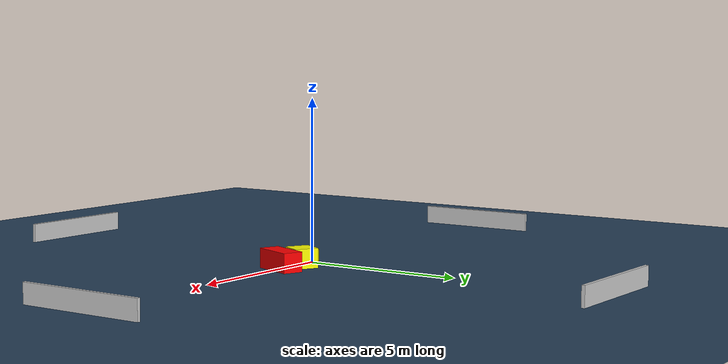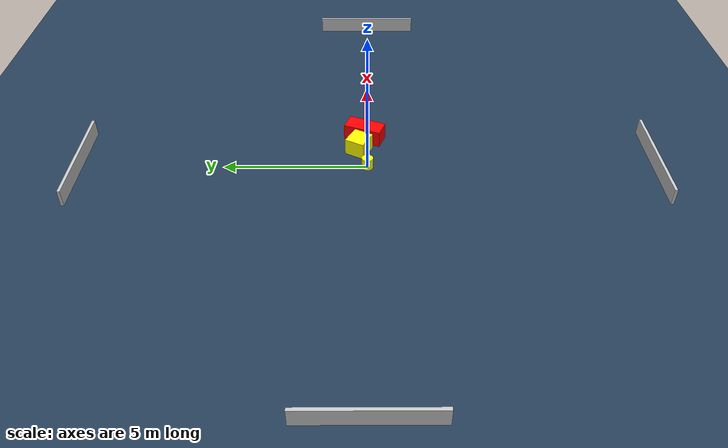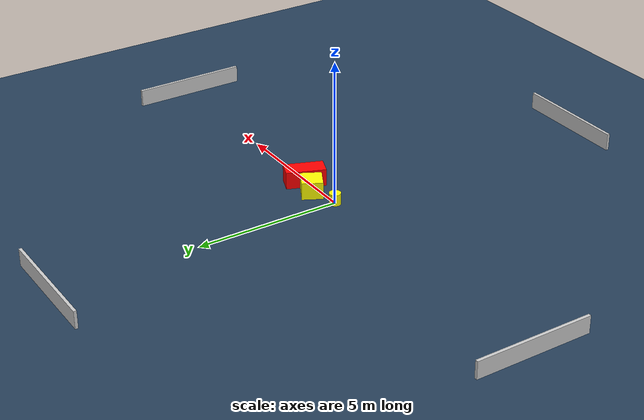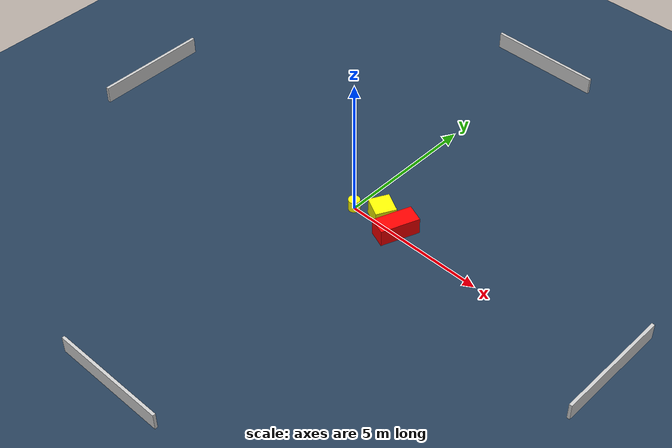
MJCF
<?xml version="1.0" ?>
<mujoco model="generated_environment">
  <option timestep="0.01" integrator="RK4" cone="elliptic"/>
  <default>
    <geom density="1"/>
  </default>
  <asset>
    <texture builtin="gradient" height="3072" name="skybox" rgb1="0.3 0.5 0.7" rgb2="0 0 0" type="skybox" width="512"/>
    <texture builtin="checker" height="300" name="groundplane" rgb1="0.2 0.3 0.4" rgb2="0.1 0.2 0.3" type="2d" width="300"/>
    <material name="groundplane" reflectance="0.2" texrepeat="5 5" texture="groundplane"/>
  </asset>
  <worldbody>
    <light dir="0 0 -1" directional="true" pos="0 0 1.5"/>
    <geom condim="3" friction="0.5 0.005 0.001" material="groundplane" name="floor" pos="0 0 0" size="0 0 0.05" type="plane"/>
    <body name="walls">
      <geom name="wall_1" condim="4" pos="-10.0 0.0 0.3" rgba="0.800000011920929 0.800000011920929 0.800000011920929 1.0" size="0.05 2.0 0.3" type="box"/>
      <geom name="wall_2" condim="4" pos="10.0 0.0 0.3" rgba="0.800000011920929 0.800000011920929 0.800000011920929 1.0" size="0.05 2.0 0.3" type="box"/>
      <geom name="wall_3" condim="4" pos="0.0 -10.0 0.3" rgba="0.800000011920929 0.800000011920929 0.800000011920929 1.0" size="2.0 0.05 0.3" type="box"/>
      <geom name="wall_4" condim="4" pos="0.0 10.0 0.3" rgba="0.800000011920929 0.800000011920929 0.800000011920929 1.0" size="2.0 0.05 0.3" type="box"/>
    </body>
    <body name="robot">
      <joint name="joint_x" type="slide" pos="0 0 0" axis="1 0 0"/>
      <joint name="joint_y" type="slide" pos="0 0 0" axis="0 1 0"/>
      <geom name="robot" type="cylinder" pos="0.0 0.0 0.2" size="0.2 0.2 0.0" mass="5.0" friction="1.0 0.005 0.0001" condim="4" rgba="1.0 1.0 0.0 1.0"/>
    </body>
    <body name="obstacle_1_movable">
      <geom name="obstacle_1_movable" condim="4" pos="0.9509216251974649 0.29644974305851823 0.3" euler="0 0 331.86776425166096" friction="0.0 0.005 0.001" rgba="1.0 1.0 0.0 1.0" size="0.37333748698974134 0.3563055230592913 0.3" type="box" mass="0.1"/>
      <joint type="free"/>
    </body>
    <body name="obstacle_2_static">
      <geom name="obstacle_2_static" condim="4" pos="1.717762989853307 0.09267000925127969 0.3" euler="0 0 338.80026927880186" friction="0.0 0.005 0.001" rgba="1.0 0.0 0.0 1.0" size="0.3153961588209471 0.678896912261435 0.3" type="box"/>
    </body>
  </worldbody>
  <actuator>
    <motor name="actuator_x" joint="joint_x" gear="1" ctrlrange="-1 1"/>
    <motor name="actuator_y" joint="joint_y" gear="1" ctrlrange="-1 1"/>
  </actuator>
</mujoco>
